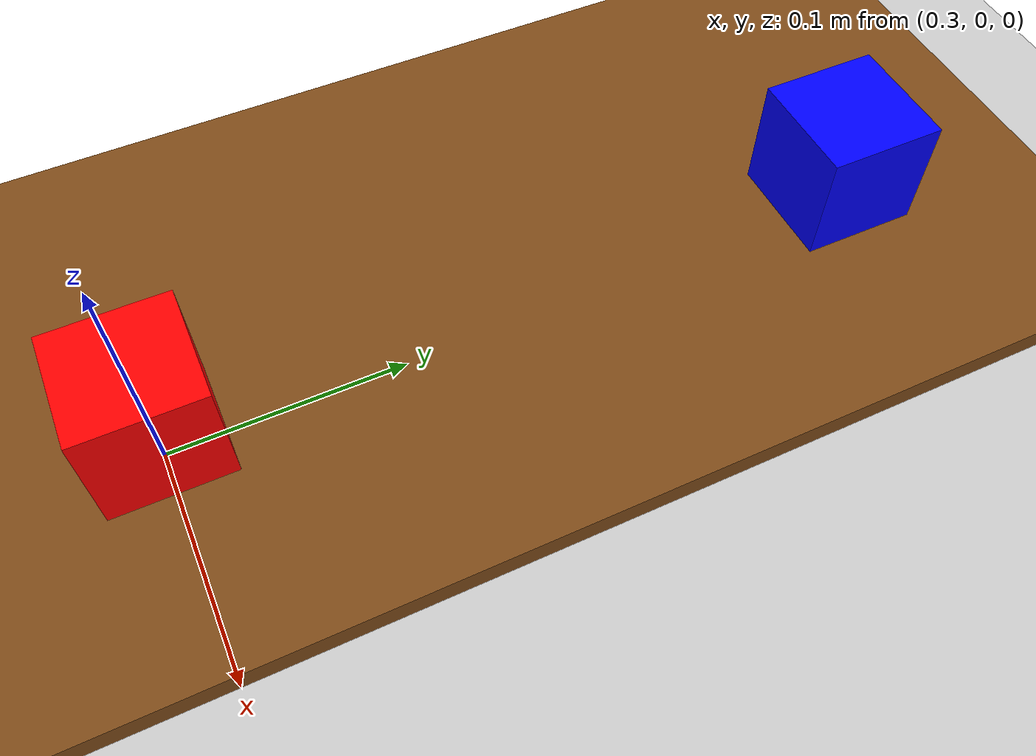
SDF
<?xml version="1.0"?>
<sdf version="1.7">
  <world name="default">

    <!-- Physics -->
    <physics name="1ms" type="ignored">
      <max_step_size>0.001</max_step_size>
      <real_time_factor>1.0</real_time_factor>
    </physics>

    <!-- Plugins required by Ignition Fortress -->
    <plugin filename="ignition-gazebo-physics-system"
            name="ignition::gazebo::systems::Physics"/>
    <plugin filename="ignition-gazebo-user-commands-system"
            name="ignition::gazebo::systems::UserCommands"/>
    <plugin filename="ignition-gazebo-scene-broadcaster-system"
            name="ignition::gazebo::systems::SceneBroadcaster"/>
    <plugin filename="ignition-gazebo-sensors-system"
            name="ignition::gazebo::systems::Sensors">
        <render_engine>ogre2</render_engine>
    </plugin>

    <!-- Light -->
    <light type="directional" name="sun">
      <cast_shadows>true</cast_shadows>
      <pose>0 0 10 0 0 0</pose>
      <diffuse>0.8 0.8 0.8 1</diffuse>
      <specular>0.2 0.2 0.2 1</specular>
      <direction>-0.5 0.1 -0.9</direction>
    </light>

    <!-- Ground plane -->
    <model name="ground_plane">
      <static>true</static>
      <link name="link">
        <collision name="collision">
          <geometry>
            <plane><normal>0 0 1</normal><size>100 100</size></plane>
          </geometry>
        </collision>
        <visual name="visual">
          <geometry>
            <plane><normal>0 0 1</normal><size>100 100</size></plane>
          </geometry>
          <material>
            <ambient>0.8 0.8 0.8 1</ambient>
            <diffuse>0.8 0.8 0.8 1</diffuse>
          </material>
        </visual>
      </link>
    </model>

    <!-- Table -->
    <model name="table">
      <static>true</static>
      <pose>0.0 0.0 0.0 0 0 0</pose>
      <link name="table_link">
        <collision name="collision">
          <geometry><box><size>0.8 0.8 0.02</size></box></geometry>
        </collision>
        <visual name="visual">
          <geometry><box><size>0.8 0.8 0.02</size></box></geometry>
          <material>
            <ambient>0.5 0.3 0.1 1</ambient>
            <diffuse>0.5 0.3 0.1 1</diffuse>
          </material>
        </visual>
      </link>
    </model>

    <!-- Red box to pick -->
    <model name="red_box">
      <pose>0.3 0.0 0.035 0 0 0</pose>
      <link name="box_link">
        <inertial>
          <mass>0.1</mass>
          <inertia>
            <ixx>0.0001</ixx><iyy>0.0001</iyy><izz>0.0001</izz>
          </inertia>
        </inertial>
        <collision name="collision">
          <geometry><box><size>0.05 0.05 0.05</size></box></geometry>
        </collision>
        <visual name="visual">
          <geometry><box><size>0.05 0.05 0.05</size></box></geometry>
          <material>
            <ambient>1 0 0 1</ambient>
            <diffuse>1 0 0 1</diffuse>
          </material>
        </visual>
      </link>
    </model>
    <model name="blue_box">
      <pose>0.3 0.3 0.035 0 0 0</pose>
      <link name="box_link">
        <inertial>
          <mass>0.1</mass>
          <inertia>
            <ixx>0.0001</ixx><iyy>0.0001</iyy><izz>0.0001</izz>
          </inertia>
        </inertial>
        <collision name="collision">
          <geometry><box><size> 0.05 0.05 0.05</size></box></geometry>
        </collision>
        <visual name="visual">
          <geometry><box><size>0.05 0.05 0.05</size></box></geometry>
          <material>
            <ambient>0 0 1 1</ambient>
            <diffuse>0 0 1 1</diffuse>
          </material>
        </visual>
      </link>
    </model>

    <model name='overhead_camera'>
      <static>true</static>
      <pose>0.5 0.0 1.0 0 1.5708 0</pose>
      <link name='camera_link'>
        <sensor name='rgbd_cam' type='rgbd_camera'>
          <camera>
            <horizontal_fov>1.047</horizontal_fov>
            <image><width>640</width><height>480</height></image>
            <clip><near>0.1</near><far>10</far></clip>
          </camera>
          <always_on>true</always_on>
          <update_rate>15</update_rate>
          <topic>camera</topic>
        </sensor>
      </link>
    </model>

  </world>
</sdf>
